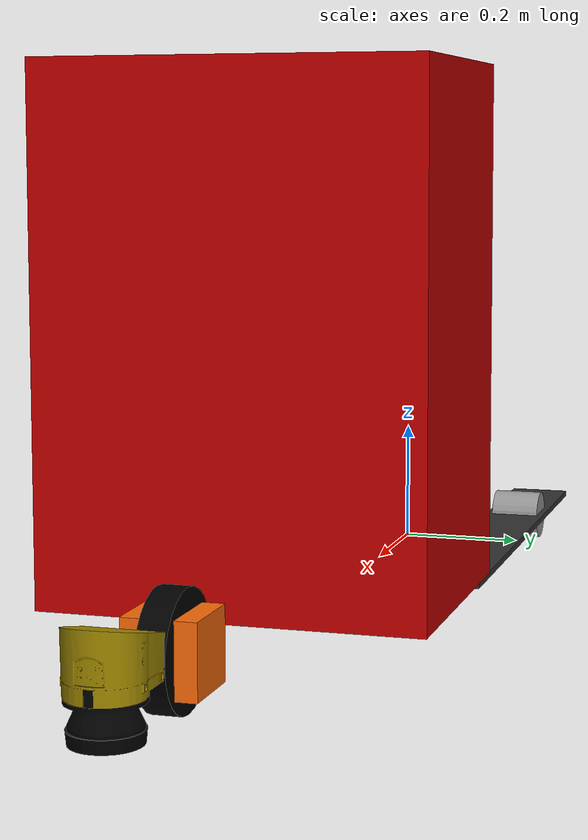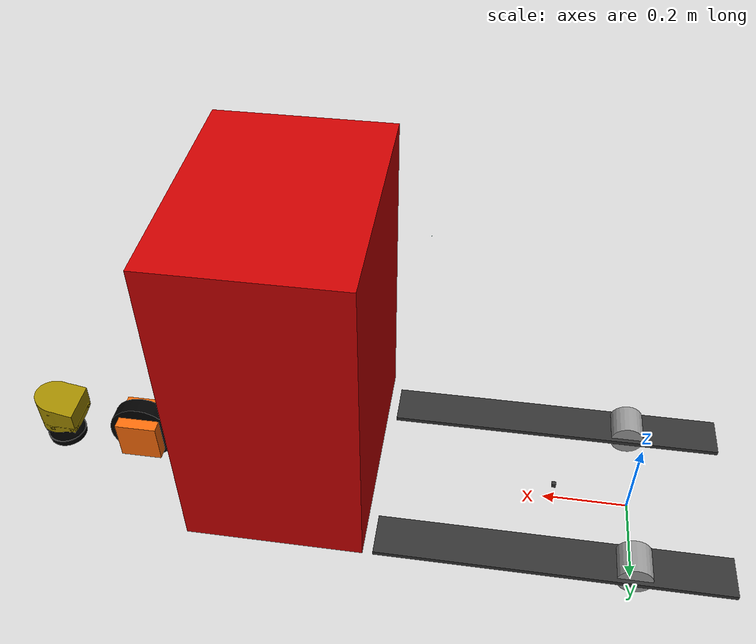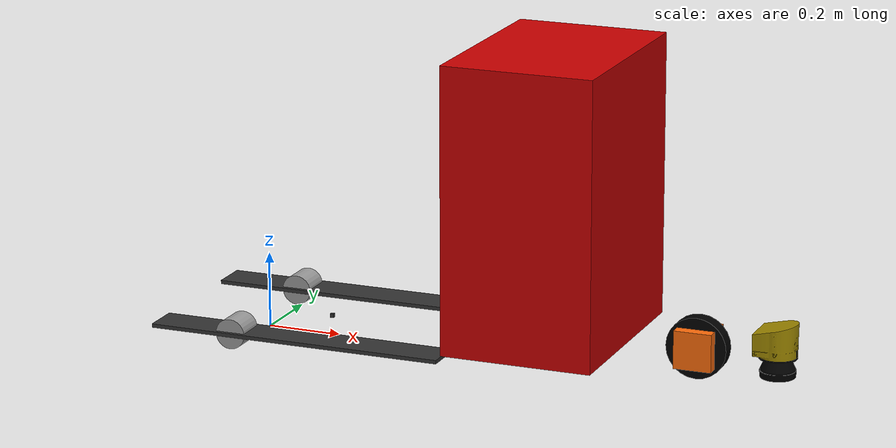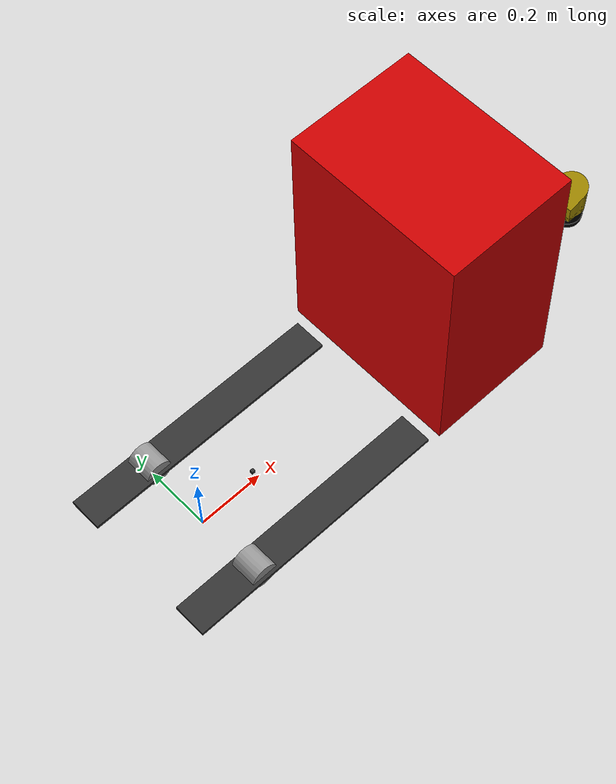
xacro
<?xml version="1.0"?>

<robot name="cititruck" xmlns:xacro="http://ros.org/wiki/xacro">

    <xacro:arg name="tf_prefix" default="robot_xacro_default"/>
    <xacro:arg name="velodyne" default="false"/>
    <xacro:arg name="kinect2" default="false"/>
    <xacro:arg name="kinect1" default="false"/> <!-- deprecated -->

    <!-- Arguments used in cititruck.gazebo -->
    <xacro:arg name="controller_prefix" default=""/>
    <xacro:arg name="sensor_prefix" default=""/>
    <xacro:arg name="sick_name" default="laser"/>
    <xacro:arg name="ls2000_name" default="nav"/>
    <xacro:arg name="kinect2_name" default=""/>
    <xacro:arg name="kinect1_name" default=""/>
    <xacro:arg name="use_gpu" default="true"/>

  <!-- Import all Gazebo-customization elements, including Gazebo colors -->
  <xacro:include filename="$(find cititruck_description)/urdf/cititruck.gazebo" />
  <!-- Import Rviz colors -->
  <xacro:include filename="$(find cititruck_description)/urdf/materials.xacro" />

  <xacro:property name="forks_pidP" value="2000" />
  <xacro:property name="forks_pidI" value="0" />
  <xacro:property name="forks_pidD" value="10" />

  <xacro:property name="forks_low" value="0.08" />
  <xacro:property name="forks_high" value="0.2" />

  <xacro:property name="forks_maxeffort" value="1000" />

  <!-- base_footprint is a fictitious link(frame) that is on the ground right below base_link origin, navigation stack dedpends on this frame and KDL needs a root link without any intertia -->
    <link name="base_footprint">
    </link>

    <joint name="base_footprint_joint" type="fixed">
      <origin xyz="0 0 0.050" rpy="0 0 0" />
      <child link="base_link" />
      <parent link="base_footprint"/>
    </joint>

  <!-- Base Link -->
  <link name="base_link">
    <inertial>
      <mass value="20"/>
      <inertia ixx="1" ixy="0" ixz="0" iyy="1" iyz="0" izz="1" />
      <origin/>
    </inertial>
    <visual>
      <origin xyz="0.8 0 0.4" rpy="0 0 0" />
      <geometry>
        <box size="0.4 0.55 0.75" />
      </geometry>
      <material name="red"/>
    </visual>

    <collision>
      <origin xyz="0.8 0 0.1" rpy="0 0 0" />
      <geometry>
        <box size="0.4 0.55 0.005" />
      </geometry>
    </collision>
  </link>

    <link name="left_fork">
      <inertial>
        <mass value="1" />
        <origin xyz="0 0 0.0" />
        <inertia ixx="0.01" ixy="0.0" ixz="0.0"
                 iyy="0.01" iyz="0.0" izz="0.01" />
      </inertial>
      <visual>
        <origin xyz="0 0 0.0" rpy="0 0 0" />
        <geometry>
          <box size="0.8 0.1 0.01" />
        </geometry>

        <material name="grey" />
      </visual>
      <collision>
        <origin xyz="0 0 0.0" rpy="0 0 0" />
        <geometry>
          <box size="0.8 0.1 0.01" />
        </geometry>
	<contact_coefficients mu="1" kp="10.0" kd="10.0"/> -->
      </collision>
    </link>

    <link name="right_fork">
      <inertial>
        <mass value="1" />
        <origin xyz="0 0 0.0" />
        <inertia ixx="0.01" ixy="0.0" ixz="0.0"
                 iyy="0.01" iyz="0.0" izz="0.01" />
      </inertial>
      <visual>
        <origin xyz="0 0 0.0" rpy="0 0 0" />
        <geometry>
          <box size="0.8 0.1 0.01" />
        </geometry>

        <material name="grey" />
      </visual>
      <collision>
        <origin xyz="0 0 0.0" rpy="0 0 0" />
        <geometry>
          <box size="0.8 0.1 0.01" />
        </geometry>
	<contact_coefficients mu="1" kp="10.0" kd="10.0"/> -->
      </collision>
    </link>

    <link name="base_fork">
      <inertial>
        <mass value="0.1" />
        <origin xyz="0 0 0.0" />
        <inertia ixx="0.01" ixy="0.0" ixz="0.0"
                 iyy="0.01" iyz="0.0" izz="0.01" />
      </inertial>
      <visual>
        <origin xyz="0 0 0.0" rpy="0 0 0" />
        <geometry>
          <box size="0.01 0.01 0.01" />
        </geometry>

        <material name="grey" />
      </visual>
    </link>

    <!-- static joint connect the single prismatic joint with the forks... -->
    <joint name="left_fork_joint" type="fixed">
      <origin xyz="0 0.205 0.0" rpy="0 0 0" />
      <child link="left_fork" />
      <parent link="base_fork"/>
    </joint>

    <joint name="right_fork_joint" type="fixed">
      <origin xyz="0 -0.205 0.0" rpy="0 0 0" />
      <child link="right_fork" />
      <parent link="base_fork"/>
    </joint>

    <joint name="fork_joint" type="prismatic">
      <origin xyz="0.18 0.0 0.0" rpy="0 0 0" />
      <parent link="base_link" />
      <child link="base_fork"/>
      <axis xyz="0 0 1" />
      <limit lower="-1" upper="1" effort="1000" velocity="100" />
    </joint>

      <link name="steer_link">
        <inertial>
          <mass value="0.01"/>
          <inertia ixx="0.001" ixy="0" ixz="0" iyy="0.001" iyz="0" izz="0.001" />
          <origin/>
        </inertial>
        <visual>
          <origin xyz="0 0 0" rpy="0 0 0" />
          <geometry>
            <box size="0.1 0.1 0.1" />
          </geometry>
          <material name="orange"/>
        </visual>
      </link>

      <link name="sd_wheel_link">
        <inertial>
          <mass value="10"/>
          <inertia ixx="0.01" ixy="0" ixz="0" iyy="0.01" iyz="0" izz="0.01" />
          <origin/>
        </inertial>
        <visual>
          <origin xyz="0 0 0" rpy="1.57 0 0" />
          <geometry>
            <cylinder radius="0.08" length="0.04" />
          </geometry>
          <material name="black"/>
        </visual>

        <collision>
          <origin xyz="0 0 0" rpy="1.57 0 0" />
          <geometry>
            <cylinder radius="0.08" length="0.04" />
          </geometry>
        </collision>
      </link>

      <joint name="base2steer_joint" type="revolute">
        <parent link="base_link"/>
        <child link="steer_link"/>
        <limit effort="10000.0" lower="-1.57" upper="1.57" velocity="100"/>
        <origin xyz="1.190 0 0.04" rpy="0 0 0" />
        <axis xyz="0 0 1" />
      </joint>
      <joint name="steer2sd_wheel_joint" type="continuous">
        <parent link="steer_link"/>
        <child link="sd_wheel_link"/>
        <limit effort="10000.0" velocity="100"/>
        <origin xyz="0 0 0" rpy="0 0 0" />
        <axis xyz="0 1 0" />
      </joint>

      <link name="fixed_left_wheel_link">
        <inertial>
          <mass value="0.1"/>
          <inertia ixx="0.01" ixy="0" ixz="0" iyy="0.01" iyz="0" izz="0.01" />
          <origin/>
        </inertial>
        <visual>
          <origin xyz="0 0 0" rpy="1.57 0 0" />
          <geometry>
            <cylinder radius="0.04" length="0.08" />
          </geometry>
          <material name="gray"/>
        </visual>

        <collision>
          <origin xyz="0 0 0" rpy="1.57 0 0" />
          <geometry>
            <cylinder radius="0.04" length="0.08" />
          </geometry>
        </collision>
      </link>

      <joint name="base2fixed_left_wheel_joint" type="continuous">
        <parent link="base_link"/>
        <child link="fixed_left_wheel_link"/>
        <origin xyz="0 0.205 0" rpy="0 0 0" />
        <axis xyz="0 1 0" />
      </joint>

      <link name="fixed_right_wheel_link">
        <inertial>
          <mass value="0.1"/>
          <inertia ixx="0.01" ixy="0" ixz="0" iyy="0.01" iyz="0" izz="0.01" />
          <origin/>
        </inertial>
        <visual>
          <origin xyz="0 0 0" rpy="1.57 0 0" />
          <geometry>
            <cylinder radius="0.04" length="0.08" />
          </geometry>
          <material name="gray"/>
        </visual>

        <collision>
          <origin xyz="0 0 0" rpy="1.57 0 0" />
          <geometry>
            <cylinder radius="0.04" length="0.08" />
          </geometry>
        </collision>
      </link>

      <joint name="base2fixed_right_wheel_joint" type="continuous">
        <parent link="base_link"/>
        <child link="fixed_right_wheel_link"/>
        <origin xyz="0 -0.205 0" rpy="0 0 0" />
        <axis xyz="0 1 0" />
      </joint>

      <!-- Sick laser -->
      <link name="$(arg sick_name)_link">
	<collision>
	  <origin xyz="0 0 0" rpy="0 0 0"/>
	  <geometry>
	    <box size="0.1 0.1 0.1"/>
	  </geometry>
	</collision>

	<visual>
	  <origin xyz="0 0 0" rpy="0 0 0"/>
	  <geometry>
            <mesh filename="package://cititruck_description/meshes/sick_s300_laser.dae"/>
	  </geometry>
	</visual>

	<inertial>
	  <mass value="1e-5" />
	  <origin xyz="0 0 0" rpy="0 0 0"/>
	  <inertia ixx="1e-6" ixy="0" ixz="0" iyy="1e-6" iyz="0" izz="1e-6" />
	</inertial>
      </link>

      <joint name="laser_joint" type="fixed">
	<axis xyz="0 1 0" />
	<origin xyz="1.4 0 0.02" rpy="3.14159 0 0"/>
	<parent link="base_link"/>
	<child link="$(arg sick_name)_link"/>
      </joint>

      <!-- Kinect -->
      <link name="$(arg kinect1_name)_link">
	<collision>
	  <origin xyz="0 0 0" rpy="0 0 0"/>
	  <geometry>
	    <box size="0.1 0.1 0.1"/>
	  </geometry>
	</collision>

	<visual>
	  <origin xyz="0 0 0" rpy="0 0 0"/>
	  <geometry>
	    <box size="0.001 0.001 0.001"/>
	  </geometry>
	</visual>

	<inertial>
	  <mass value="1e-5" />
	  <origin xyz="0 0 0" rpy="0 0 0"/>
	  <inertia ixx="1e-6" ixy="0" ixz="0" iyy="1e-6" iyz="0" izz="1e-6" />
	</inertial>
      </link>

      <joint name="kinect_joint" type="fixed">
	<axis xyz="0 1 0" />
 	<!--origin xyz="0.5 0 0.7" rpy="${pi/2 + 0.5} 0 ${-pi/2}" /-->
 	<origin xyz="0.5 0 0.7" rpy="0 2.5 0"/>
	<parent link="base_link"/>
	<child link="$(arg kinect1_name)_link"/>
      </joint>

      <link name="$(arg kinect1_name)_rgb_optical_frame"/>
      <joint name="kinect_optical_joint" type="fixed">
        <axis xyz="0 1 0" />
        <origin xyz="0.0 0.0 0.0" rpy="${-pi/2} 0 ${-pi/2}"/>
        <parent link="$(arg kinect1_name)_link"/>
        <child link="$(arg kinect1_name)_rgb_optical_frame"/>
      </joint>

</robot>

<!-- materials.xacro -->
<robot>

  <material name="black">
    <color rgba="0.0 0.0 0.0 1.0"/>
  </material>

  <material name="blue">
    <color rgba="0.0 0.0 0.8 1.0"/>
  </material>

  <material name="green">
    <color rgba="0.0 0.8 0.0 1.0"/>
  </material>

  <material name="grey">
    <color rgba="0.2 0.2 0.2 1.0"/>
  </material>

  <material name="grey2">
    <color rgba="0.4 0.4 0.4 1.0"/>
  </material>

  <material name="orange">
    <color rgba="${255/255} ${108/255} ${10/255} 1.0"/>
  </material>

  <material name="brown">
    <color rgba="${222/255} ${207/255} ${195/255} 1.0"/>
  </material>

  <material name="red">
    <color rgba="0.8 0.0 0.0 1.0"/>
  </material>

  <material name="white">
    <color rgba="1.0 1.0 1.0 1.0"/>
  </material>

</robot>
